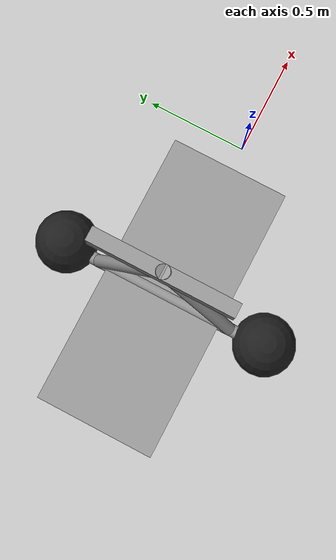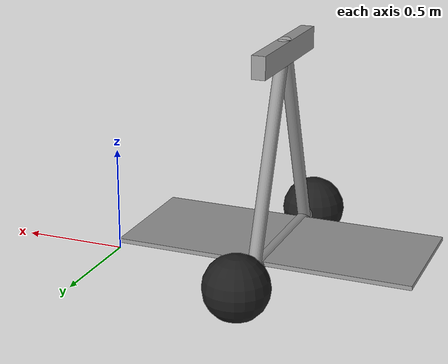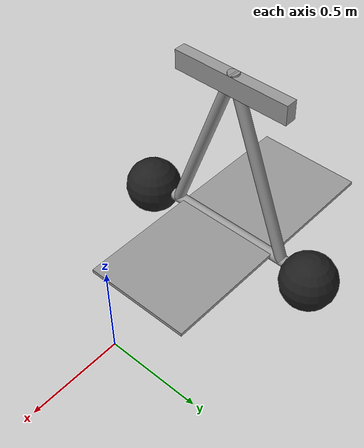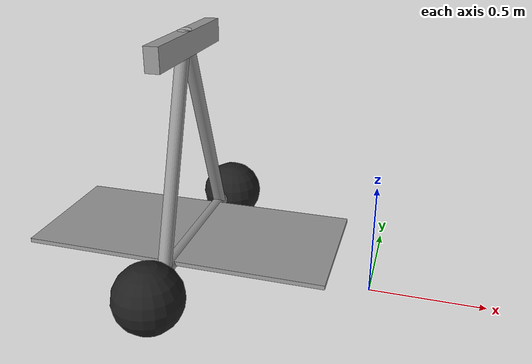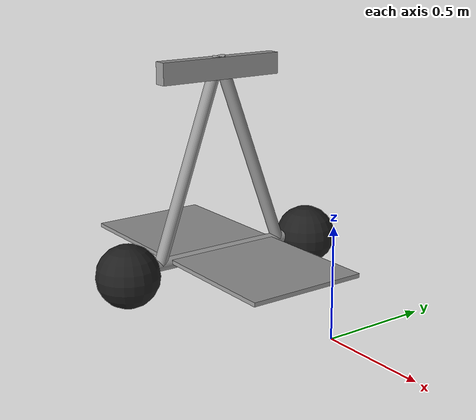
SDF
<?xml version='1.0'?>
<sdf version='1.7'>
  <model name='segway'>
    <link name='frame'>
      <pose>-0.828558 -0 0.635023 -3.14158 -1.56957 3.14158</pose>
      <inertial>
        <pose>0 0 0 0 -0 0</pose>
        <mass>10</mass>
        <inertia>
          <ixx>0.228</ixx>
          <iyy>0.743521</iyy>
          <izz>0.965521</izz>
          <ixy>0</ixy>
          <ixz>0</ixz>
          <iyz>0</iyz>
        </inertia>
      </inertial>
      <self_collide>0</self_collide>
      <enable_wind>0</enable_wind>
      <kinematic>0</kinematic>
      <gravity>1</gravity>
      <visual name='frame_right_visual'>
        <pose>0 -0.171552 0 2.7948 1.57079 -3.13932</pose>
        <geometry>
          <cylinder>
            <length>1.00317</length>
            <radius>0.03</radius>
          </cylinder>
        </geometry>
        <material>
          <script>
            <uri>file://media/materials/scripts/gazebo.material</uri>
            <name>Gazebo/Grey</name>
          </script>
          <shader type='pixel'>
            <normal_map>__default__</normal_map>
          </shader>
          <ambient>0.3 0.3 0.3 1</ambient>
          <diffuse>0.7 0.7 0.7 1</diffuse>
          <specular>0.01 0.01 0.01 1</specular>
          <emissive>0 0 0 1</emissive>
        </material>
        <transparency>0</transparency>
        <cast_shadows>1</cast_shadows>
      </visual>
      <visual name='frame_left_visual'>
        <pose>0 0.171552 0 -2.7948 1.57079 3.13932</pose>
        <geometry>
          <cylinder>
            <length>1.00317</length>
            <radius>0.03</radius>
          </cylinder>
        </geometry>
        <material>
          <script>
            <uri>file://media/materials/scripts/gazebo.material</uri>
            <name>Gazebo/Grey</name>
          </script>
          <shader type='pixel'>
            <normal_map>__default__</normal_map>
          </shader>
          <ambient>0.3 0.3 0.3 1</ambient>
          <diffuse>0.7 0.7 0.7 1</diffuse>
          <specular>0.01 0.01 0.01 1</specular>
          <emissive>0 0 0 1</emissive>
        </material>
        <transparency>0</transparency>
        <cast_shadows>1</cast_shadows>
      </visual>
      <visual name='axle_visual'>
        <pose>-0.471335 0 0 1.5708 -0 0</pose>
        <geometry>
          <cylinder>
            <length>1.03923</length>
            <radius>0.03</radius>
          </cylinder>
        </geometry>
        <material>
          <script>
            <uri>file://media/materials/scripts/gazebo.material</uri>
            <name>Gazebo/Grey</name>
          </script>
          <shader type='pixel'>
            <normal_map>__default__</normal_map>
          </shader>
          <ambient>0.3 0.3 0.3 1</ambient>
          <diffuse>0.7 0.7 0.7 1</diffuse>
          <specular>0.01 0.01 0.01 1</specular>
          <emissive>0 0 0 1</emissive>
        </material>
        <transparency>0</transparency>
        <cast_shadows>1</cast_shadows>
      </visual>
      <collision name='axle_collision'>
        <laser_retro>0</laser_retro>
        <max_contacts>10</max_contacts>
        <pose>-0.471335 0 0 1.5708 -0 0</pose>
        <geometry>
          <cylinder>
            <radius>0.03</radius>
            <length>1.03923</length>
          </cylinder>
        </geometry>
        <surface>
          <friction>
            <ode>
              <mu>1</mu>
              <mu2>1</mu2>
              <fdir1>0 0 0</fdir1>
              <slip1>0</slip1>
              <slip2>0</slip2>
            </ode>
            <torsional>
              <coefficient>1</coefficient>
              <patch_radius>0</patch_radius>
              <surface_radius>0</surface_radius>
              <use_patch_radius>1</use_patch_radius>
              <ode>
                <slip>0</slip>
              </ode>
            </torsional>
          </friction>
          <bounce>
            <restitution_coefficient>0</restitution_coefficient>
            <threshold>1e+06</threshold>
          </bounce>
          <contact>
            <collide_without_contact>0</collide_without_contact>
            <collide_without_contact_bitmask>1</collide_without_contact_bitmask>
            <collide_bitmask>1</collide_bitmask>
            <ode>
              <soft_cfm>0</soft_cfm>
              <soft_erp>0.2</soft_erp>
              <kp>1e+13</kp>
              <kd>1</kd>
              <max_vel>0.01</max_vel>
              <min_depth>0</min_depth>
            </ode>
            <bullet>
              <split_impulse>1</split_impulse>
              <split_impulse_penetration_threshold>-0.01</split_impulse_penetration_threshold>
              <soft_cfm>0</soft_cfm>
              <soft_erp>0.2</soft_erp>
              <kp>1e+13</kp>
              <kd>1</kd>
            </bullet>
          </contact>
        </surface>
      </collision>
      <collision name='frame_left_collision'>
        <laser_retro>0</laser_retro>
        <max_contacts>10</max_contacts>
        <pose>0 0.171552 0 -2.79253 1.57079 -3.14159</pose>
        <geometry>
          <cylinder>
            <radius>0.03</radius>
            <length>1.00317</length>
          </cylinder>
        </geometry>
        <surface>
          <friction>
            <ode>
              <mu>1</mu>
              <mu2>1</mu2>
              <fdir1>0 0 0</fdir1>
              <slip1>0</slip1>
              <slip2>0</slip2>
            </ode>
            <torsional>
              <coefficient>1</coefficient>
              <patch_radius>0</patch_radius>
              <surface_radius>0</surface_radius>
              <use_patch_radius>1</use_patch_radius>
              <ode>
                <slip>0</slip>
              </ode>
            </torsional>
          </friction>
          <bounce>
            <restitution_coefficient>0</restitution_coefficient>
            <threshold>1e+06</threshold>
          </bounce>
          <contact>
            <collide_without_contact>0</collide_without_contact>
            <collide_without_contact_bitmask>1</collide_without_contact_bitmask>
            <collide_bitmask>1</collide_bitmask>
            <ode>
              <soft_cfm>0</soft_cfm>
              <soft_erp>0.2</soft_erp>
              <kp>1e+13</kp>
              <kd>1</kd>
              <max_vel>0.01</max_vel>
              <min_depth>0</min_depth>
            </ode>
            <bullet>
              <split_impulse>1</split_impulse>
              <split_impulse_penetration_threshold>-0.01</split_impulse_penetration_threshold>
              <soft_cfm>0</soft_cfm>
              <soft_erp>0.2</soft_erp>
              <kp>1e+13</kp>
              <kd>1</kd>
            </bullet>
          </contact>
        </surface>
      </collision>
      <collision name='frame_right_collision'>
        <laser_retro>0</laser_retro>
        <max_contacts>10</max_contacts>
        <pose>0 -0.171552 0 2.79253 1.57079 3.14159</pose>
        <geometry>
          <cylinder>
            <radius>0.03</radius>
            <length>1.00317</length>
          </cylinder>
        </geometry>
        <surface>
          <friction>
            <ode>
              <mu>1</mu>
              <mu2>1</mu2>
              <fdir1>0 0 0</fdir1>
              <slip1>0</slip1>
              <slip2>0</slip2>
            </ode>
            <torsional>
              <coefficient>1</coefficient>
              <patch_radius>0</patch_radius>
              <surface_radius>0</surface_radius>
              <use_patch_radius>1</use_patch_radius>
              <ode>
                <slip>0</slip>
              </ode>
            </torsional>
          </friction>
          <bounce>
            <restitution_coefficient>0</restitution_coefficient>
            <threshold>1e+06</threshold>
          </bounce>
          <contact>
            <collide_without_contact>0</collide_without_contact>
            <collide_without_contact_bitmask>1</collide_without_contact_bitmask>
            <collide_bitmask>1</collide_bitmask>
            <ode>
              <soft_cfm>0</soft_cfm>
              <soft_erp>0.2</soft_erp>
              <kp>1e+13</kp>
              <kd>1</kd>
              <max_vel>0.01</max_vel>
              <min_depth>0</min_depth>
            </ode>
            <bullet>
              <split_impulse>1</split_impulse>
              <split_impulse_penetration_threshold>-0.01</split_impulse_penetration_threshold>
              <soft_cfm>0</soft_cfm>
              <soft_erp>0.2</soft_erp>
              <kp>1e+13</kp>
              <kd>1</kd>
            </bullet>
          </contact>
        </surface>
      </collision>
    </link>
    <link name='link_0'>
      <inertial>
        <mass>0.00404486</mass>
        <inertia>
          <ixx>0.000136851</ixx>
          <ixy>0</ixy>
          <ixz>0</ixz>
          <iyy>4.85973e-06</iyy>
          <iyz>0</iyz>
          <izz>0.000139099</izz>
        </inertia>
        <pose>0 0 0 0 -0 0</pose>
      </inertial>
      <pose>-0.829148 -0 1.05662 -3.14158 -1.56957 3.14158</pose>
      <sensor name='br_imu' type='imu'>
        <always_on>1</always_on>
        <update_rate>33</update_rate>
        <plugin name='bytes_imu' filename='libgazebo_ros_imu_sensor.so'>
          <ros>
            <namespace>/imu</namespace>
            <remapping>~/out:=raw</remapping>
          </ros>
          <initial_orientation_as_reference>0</initial_orientation_as_reference>
        </plugin>
        <imu>
          <angular_velocity>
            <x>
              <noise type='gaussian'>
                <mean>0</mean>
                <stddev>1e-10</stddev>
              </noise>
            </x>
            <y>
              <noise type='gaussian'>
                <mean>0</mean>
                <stddev>1e-10</stddev>
              </noise>
            </y>
            <z>
              <noise type='gaussian'>
                <mean>0</mean>
                <stddev>1e-10</stddev>
              </noise>
            </z>
          </angular_velocity>
          <linear_acceleration>
            <x>
              <noise type='gaussian'>
                <mean>0</mean>
                <stddev>1e-10</stddev>
              </noise>
            </x>
            <y>
              <noise type='gaussian'>
                <mean>0</mean>
                <stddev>1e-10</stddev>
              </noise>
            </y>
            <z>
              <noise type='gaussian'>
                <mean>0</mean>
                <stddev>1e-10</stddev>
              </noise>
            </z>
          </linear_acceleration>
        </imu>
        <gaussianNoise>0.0</gaussianNoise>
      </sensor>
      <self_collide>0</self_collide>
      <enable_wind>0</enable_wind>
      <kinematic>0</kinematic>
      <visual name='visual'>
        <pose>0 0 0 0 -0 0</pose>
        <geometry>
          <box>
            <size>0.102681 0.634135 0.062242</size>
          </box>
        </geometry>
        <material>
          <lighting>1</lighting>
          <script>
            <uri>file://media/materials/scripts/gazebo.material</uri>
            <name>Gazebo/Grey</name>
          </script>
          <shader type='pixel'/>
          <emissive>0 0 0 1</emissive>
        </material>
        <transparency>0</transparency>
        <cast_shadows>1</cast_shadows>
      </visual>
      <collision name='collision'>
        <laser_retro>0</laser_retro>
        <max_contacts>10</max_contacts>
        <pose>0 0 0 0 -0 0</pose>
        <geometry>
          <box>
            <size>0.102681 0.634135 0.062242</size>
          </box>
        </geometry>
        <surface>
          <friction>
            <ode>
              <mu>1</mu>
              <mu2>1</mu2>
              <fdir1>0 0 0</fdir1>
              <slip1>0</slip1>
              <slip2>0</slip2>
            </ode>
            <torsional>
              <coefficient>1</coefficient>
              <patch_radius>0</patch_radius>
              <surface_radius>0</surface_radius>
              <use_patch_radius>1</use_patch_radius>
              <ode>
                <slip>0</slip>
              </ode>
            </torsional>
          </friction>
          <bounce>
            <restitution_coefficient>0</restitution_coefficient>
            <threshold>1e+06</threshold>
          </bounce>
          <contact>
            <collide_without_contact>0</collide_without_contact>
            <collide_without_contact_bitmask>1</collide_without_contact_bitmask>
            <collide_bitmask>1</collide_bitmask>
            <ode>
              <soft_cfm>0</soft_cfm>
              <soft_erp>0.2</soft_erp>
              <kp>1e+13</kp>
              <kd>1</kd>
              <max_vel>0.01</max_vel>
              <min_depth>0</min_depth>
            </ode>
            <bullet>
              <split_impulse>1</split_impulse>
              <split_impulse_penetration_threshold>-0.01</split_impulse_penetration_threshold>
              <soft_cfm>0</soft_cfm>
              <soft_erp>0.2</soft_erp>
              <kp>1e+13</kp>
              <kd>1</kd>
            </bullet>
          </contact>
        </surface>
      </collision>
    </link>
    <link name='link_1'>
      <inertial>
        <mass>0.0155351</mass>
        <inertia>
          <ixx>0.00284463</ixx>
          <ixy>0</ixy>
          <ixz>0</ixz>
          <iyy>0.00240257</iyy>
          <iyz>0</iyz>
          <izz>0.000443052</izz>
        </inertia>
        <pose>0 0 0 0 -0 0</pose>
      </inertial>
      <pose>-0.833502 0 0.173755 -3.14158 -1.56957 3.14158</pose>
      <self_collide>0</self_collide>
      <enable_wind>0</enable_wind>
      <kinematic>0</kinematic>
      <visual name='visual'>
        <pose>0 0 0 0 -0 0</pose>
        <geometry>
          <box>
            <size>0.019499 0.584682 1.36216</size>
          </box>
        </geometry>
        <material>
          <lighting>1</lighting>
          <script>
            <uri>file://media/materials/scripts/gazebo.material</uri>
            <name>Gazebo/Grey</name>
          </script>
          <shader type='pixel'/>
          <emissive>0 0 0 1</emissive>
        </material>
        <transparency>0</transparency>
        <cast_shadows>1</cast_shadows>
      </visual>
      <collision name='collision'>
        <laser_retro>0</laser_retro>
        <max_contacts>10</max_contacts>
        <pose>0 0 0 0 -0 0</pose>
        <geometry>
          <box>
            <size>0.019499 0.584682 1.36216</size>
          </box>
        </geometry>
        <surface>
          <friction>
            <ode>
              <mu>1</mu>
              <mu2>1</mu2>
              <fdir1>0 0 0</fdir1>
              <slip1>0</slip1>
              <slip2>0</slip2>
            </ode>
            <torsional>
              <coefficient>1</coefficient>
              <patch_radius>0</patch_radius>
              <surface_radius>0</surface_radius>
              <use_patch_radius>1</use_patch_radius>
              <ode>
                <slip>0</slip>
              </ode>
            </torsional>
          </friction>
          <bounce>
            <restitution_coefficient>0</restitution_coefficient>
            <threshold>1e+06</threshold>
          </bounce>
          <contact>
            <collide_without_contact>0</collide_without_contact>
            <collide_without_contact_bitmask>1</collide_without_contact_bitmask>
            <collide_bitmask>1</collide_bitmask>
            <ode>
              <soft_cfm>0</soft_cfm>
              <soft_erp>0.2</soft_erp>
              <kp>1e+13</kp>
              <kd>1</kd>
              <max_vel>0.01</max_vel>
              <min_depth>0</min_depth>
            </ode>
            <bullet>
              <split_impulse>1</split_impulse>
              <split_impulse_penetration_threshold>-0.01</split_impulse_penetration_threshold>
              <soft_cfm>0</soft_cfm>
              <soft_erp>0.2</soft_erp>
              <kp>1e+13</kp>
              <kd>1</kd>
            </bullet>
          </contact>
        </surface>
      </collision>
    </link>
    <link name='wheel_rear_left'>
      <pose>-0.817119 0.519616 0.15 0 -0 0</pose>
      <inertial>
        <mass>0.5</mass>
        <inertia>
          <ixx>0.0045</ixx>
          <iyy>0.0045</iyy>
          <izz>0.0045</izz>
          <ixy>0</ixy>
          <ixz>0</ixz>
          <iyz>0</iyz>
        </inertia>
        <pose>0 0 0 0 -0 0</pose>
      </inertial>
      <self_collide>0</self_collide>
      <enable_wind>0</enable_wind>
      <kinematic>0</kinematic>
      <visual name='visual'>
        <geometry>
          <sphere>
            <radius>0.15</radius>
          </sphere>
        </geometry>
        <material>
          <script>
            <uri>file://media/materials/scripts/gazebo.material</uri>
            <name>Gazebo/Black</name>
          </script>
          <shader type='pixel'/>
        </material>
        <pose>0 0 0 0 -0 0</pose>
        <transparency>0</transparency>
        <cast_shadows>1</cast_shadows>
      </visual>
      <collision name='collision'>
        <laser_retro>0</laser_retro>
        <max_contacts>10</max_contacts>
        <pose>0 0 0 0 -0 0</pose>
        <geometry>
          <sphere>
            <radius>0.15</radius>
          </sphere>
        </geometry>
        <surface>
          <friction>
            <ode>
              <mu>1</mu>
              <mu2>1</mu2>
              <fdir1>0 0 0</fdir1>
              <slip1>0</slip1>
              <slip2>0</slip2>
            </ode>
            <torsional>
              <coefficient>1</coefficient>
              <patch_radius>0</patch_radius>
              <surface_radius>0</surface_radius>
              <use_patch_radius>1</use_patch_radius>
              <ode>
                <slip>0</slip>
              </ode>
            </torsional>
          </friction>
          <bounce>
            <restitution_coefficient>0</restitution_coefficient>
            <threshold>1e+06</threshold>
          </bounce>
          <contact>
            <collide_without_contact>0</collide_without_contact>
            <collide_without_contact_bitmask>1</collide_without_contact_bitmask>
            <collide_bitmask>1</collide_bitmask>
            <ode>
              <soft_cfm>0</soft_cfm>
              <soft_erp>0.2</soft_erp>
              <kp>1e+08</kp>
              <kd>1</kd>
              <max_vel>0.01</max_vel>
              <min_depth>0.0005</min_depth>
            </ode>
            <bullet>
              <split_impulse>1</split_impulse>
              <split_impulse_penetration_threshold>-0.01</split_impulse_penetration_threshold>
              <soft_cfm>0</soft_cfm>
              <soft_erp>0.2</soft_erp>
              <kp>1e+08</kp>
              <kd>1</kd>
            </bullet>
          </contact>
        </surface>
      </collision>
    </link>
    <link name='wheel_rear_right'>
      <pose>-0.817118 -0.519616 0.15 0 -0 0</pose>
      <inertial>
        <mass>0.5</mass>
        <inertia>
          <ixx>0.0045</ixx>
          <iyy>0.0045</iyy>
          <izz>0.0045</izz>
          <ixy>0</ixy>
          <ixz>0</ixz>
          <iyz>0</iyz>
        </inertia>
        <pose>0 0 0 0 -0 0</pose>
      </inertial>
      <self_collide>0</self_collide>
      <enable_wind>0</enable_wind>
      <kinematic>0</kinematic>
      <visual name='visual'>
        <geometry>
          <sphere>
            <radius>0.15</radius>
          </sphere>
        </geometry>
        <material>
          <script>
            <uri>file://media/materials/scripts/gazebo.material</uri>
            <name>Gazebo/Black</name>
          </script>
          <shader type='pixel'/>
        </material>
        <pose>0 0 0 0 -0 0</pose>
        <transparency>0</transparency>
        <cast_shadows>1</cast_shadows>
      </visual>
      <collision name='collision'>
        <laser_retro>0</laser_retro>
        <max_contacts>10</max_contacts>
        <pose>0 0 0 0 -0 0</pose>
        <geometry>
          <sphere>
            <radius>0.15</radius>
          </sphere>
        </geometry>
        <surface>
          <friction>
            <ode>
              <mu>1</mu>
              <mu2>1</mu2>
              <fdir1>0 0 0</fdir1>
              <slip1>0</slip1>
              <slip2>0</slip2>
            </ode>
            <torsional>
              <coefficient>1</coefficient>
              <patch_radius>0</patch_radius>
              <surface_radius>0</surface_radius>
              <use_patch_radius>1</use_patch_radius>
              <ode>
                <slip>0</slip>
              </ode>
            </torsional>
          </friction>
          <bounce>
            <restitution_coefficient>0</restitution_coefficient>
            <threshold>1e+06</threshold>
          </bounce>
          <contact>
            <collide_without_contact>0</collide_without_contact>
            <collide_without_contact_bitmask>1</collide_without_contact_bitmask>
            <collide_bitmask>1</collide_bitmask>
            <ode>
              <soft_cfm>0</soft_cfm>
              <soft_erp>0.2</soft_erp>
              <kp>1e+08</kp>
              <kd>1</kd>
              <max_vel>0.01</max_vel>
              <min_depth>0.0005</min_depth>
            </ode>
            <bullet>
              <split_impulse>1</split_impulse>
              <split_impulse_penetration_threshold>-0.01</split_impulse_penetration_threshold>
              <soft_cfm>0</soft_cfm>
              <soft_erp>0.2</soft_erp>
              <kp>1e+08</kp>
              <kd>1</kd>
            </bullet>
          </contact>
        </surface>
      </collision>
    </link>
    <joint name='frame_JOINT_1' type='fixed'>
      <parent>frame</parent>
      <child>link_0</child>
      <pose>0 0 0 0 -0 0</pose>
      <physics>
        <ode>
          <limit>
            <cfm>0</cfm>
            <erp>0.2</erp>
          </limit>
          <suspension>
            <cfm>0</cfm>
            <erp>0.2</erp>
          </suspension>
        </ode>
      </physics>
    </joint>
    <joint name='frame_JOINT_2' type='fixed'>
      <parent>frame</parent>
      <child>link_1</child>
      <pose>0 0 0 0 -0 0</pose>
      <physics>
        <ode>
          <limit>
            <cfm>0</cfm>
            <erp>0.2</erp>
          </limit>
          <suspension>
            <cfm>0</cfm>
            <erp>0.2</erp>
          </suspension>
        </ode>
      </physics>
    </joint>
    <joint name='wheel_rear_left_spin' type='revolute'>
      <parent>frame</parent>
      <child>wheel_rear_left</child>
      <pose>0 0 0 0 -0 0</pose>
      <axis>
        <xyz>0 1 0</xyz>
        <limit>
          <lower>-1e+16</lower>
          <upper>1e+16</upper>
          <effort>-1</effort>
          <velocity>-1</velocity>
        </limit>
        <dynamics>
          <spring_reference>0</spring_reference>
          <spring_stiffness>0</spring_stiffness>
          <damping>0</damping>
          <friction>0</friction>
        </dynamics>
      </axis>
      <physics>
        <ode>
          <limit>
            <cfm>0</cfm>
            <erp>0.2</erp>
          </limit>
          <suspension>
            <cfm>0</cfm>
            <erp>0.2</erp>
          </suspension>
        </ode>
      </physics>
    </joint>
    <joint name='wheel_rear_right_spin' type='revolute'>
      <parent>frame</parent>
      <child>wheel_rear_right</child>
      <pose>0 0 0 0 -0 0</pose>
      <axis>
        <xyz>0 1 0</xyz>
        <limit>
          <lower>-1e+16</lower>
          <upper>1e+16</upper>
          <effort>-1</effort>
          <velocity>-1</velocity>
        </limit>
        <dynamics>
          <spring_reference>0</spring_reference>
          <spring_stiffness>0</spring_stiffness>
          <damping>0</damping>
          <friction>0</friction>
        </dynamics>
      </axis>
      <physics>
        <ode>
          <limit>
            <cfm>0</cfm>
            <erp>0.2</erp>
          </limit>
          <suspension>
            <cfm>0</cfm>
            <erp>0.2</erp>
          </suspension>
        </ode>
      </physics>
    </joint>
    <static>0</static>
    <allow_auto_disable>1</allow_auto_disable>
    <plugin name='tricycle_drive' filename='/home/hochmax/segway/install/segway/lib/segway/libgazebo_ros_segway_drive.so'>
      <ros/>
      <steering_joint>wheel_front_steer</steering_joint>
      <encoder_wheel_left_joint>wheel_rear_left_spin</encoder_wheel_left_joint>
      <encoder_wheel_right_joint>wheel_rear_right_spin</encoder_wheel_right_joint>
      <wheel_separation>1.0</wheel_separation>
      <encoder_wheel_diameter>0.3</encoder_wheel_diameter>
      <actuated_wheel_diameter>0.3</actuated_wheel_diameter>
      <max_wheel_torque>40</max_wheel_torque>
      <max_wheel_acceleration>20.0</max_wheel_acceleration>
      <max_steering_speed>1.0</max_steering_speed>
      <publish_odom>1</publish_odom>
      <publish_wheel_tf>1</publish_wheel_tf>
      <publish_wheel_joint_state>1</publish_wheel_joint_state>
      <odometry_frame>odom_demo</odometry_frame>
      <robot_base_frame>fork</robot_base_frame>
    </plugin>
  </model>
</sdf>
